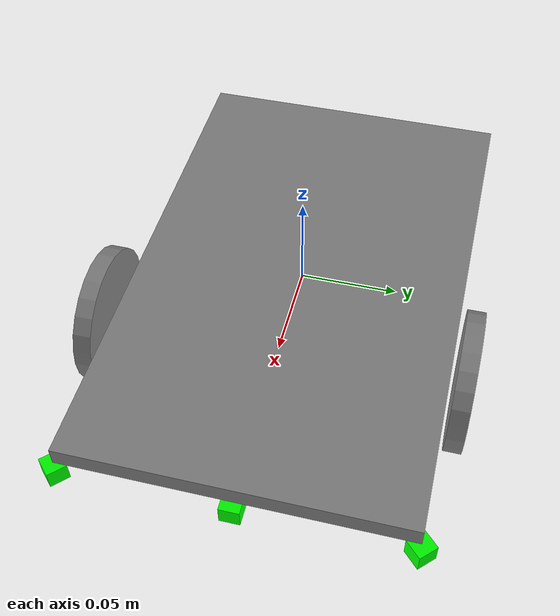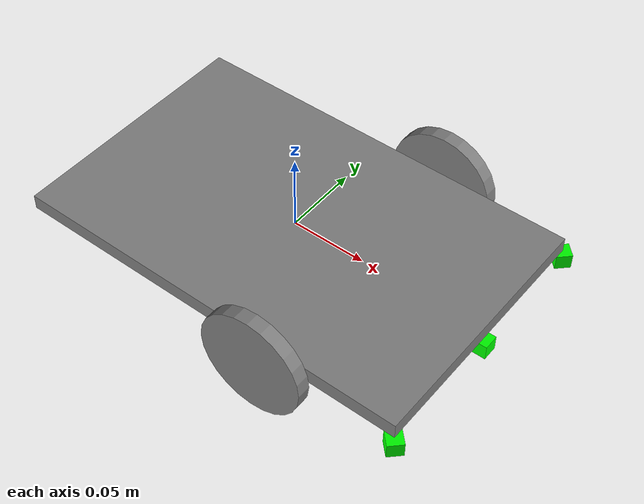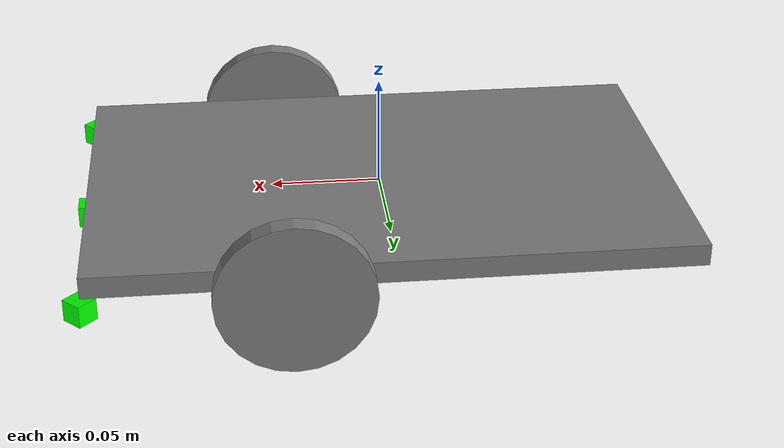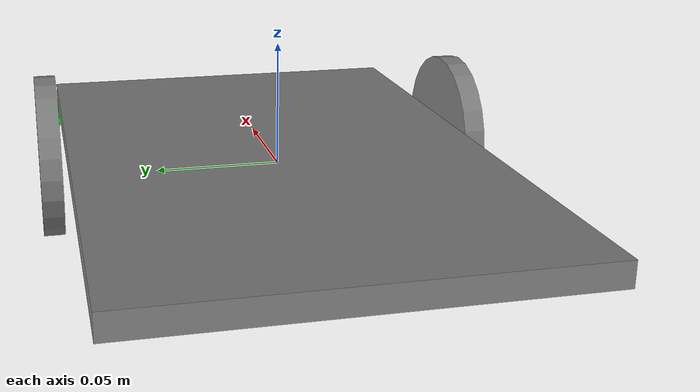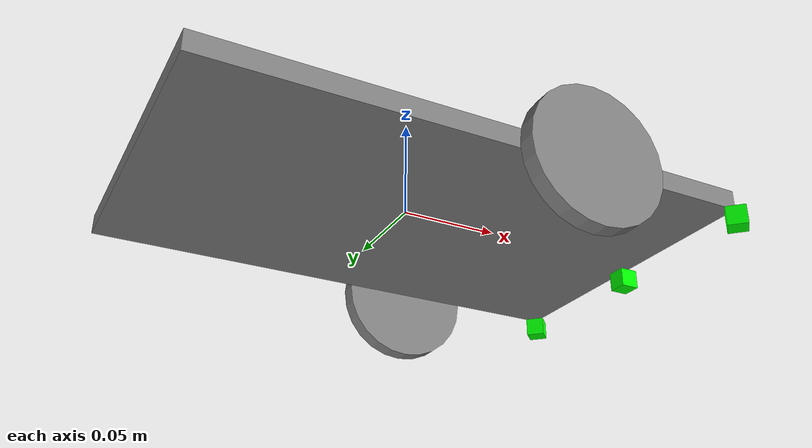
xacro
<?xml version="1.0"?>
<robot xmlns:xacro="http://ros.org/wiki/xacro" name="r2g2">

  <!-- Define the material for visualization -->
  <material name="gray">
    <color rgba="0.5 0.5 0.5 1"/>
  </material>

  <material name="green">
    <color rgba="0 1 0 1" />
  </material>

  <material name="blue">
    <color rgba="0 0 1 1" />
  </material>

  <material name="red_color">
    <color rgba="1 0 0 1" />
  </material>

  <!-- Define the wheel radius and separation distance -->
  <xacro:property name="base_width" value="0.17"/>
  <xacro:property name="base_len" value="0.27"/>
  <xacro:property name="wheel_radius" value="0.035"/>
  <xacro:property name="base_wheel_gap" value="0.007"/>
  <xacro:property name="wheel_separation" value="0.17"/>
  <xacro:property name="wheel_joint_offset" value="0.045"/>

  <!--Base Footprint-->
  <link name="base_footprint">
    <visual>
        <origin xyz="0 0 0" rpy="0 0 0" />
        <geometry>
            <box size="0.001 0.001 0.001" />
        </geometry>
    </visual>
  </link>

  <!-- Base Link -->
  <link name="base_link">
    <visual>
      <origin rpy="0 0 0" xyz="0 0 0"/>
      <geometry>
        <box size="${base_len} ${base_width} 0.01"/>
      </geometry>
      <material name="gray"/>
    </visual>
  </link>

    <!--base_link to base_footprint Joint-->
  <joint name="base_link_joint" type="fixed">
    <origin xyz="0 0 0" rpy="0 0 0" />
    <parent link="base_footprint"/>
    <child link="base_link" />
  </joint>

    <!-- Left Wheel and Link-->
  <link name="left_wheel_link">
    <visual>
      <origin xyz="0 0 0" rpy="${pi/2} 0 0" />
        <geometry>
          <cylinder radius="${wheel_radius}" length="0.009"/>
        </geometry>
        <material name="gray"/>
    </visual>
    <collision>
      <origin xyz="0 0 0" rpy="${pi/2} 0 0"/>
        <geometry>
          <cylinder radius="${wheel_radius}" length="0.009"/>
        </geometry>
    </collision>

  </link>

  <joint name="left_wheel_joint" type="continuous">
      <axis xyz="0 1 0" rpy="0 0 0" />
      <parent link="base_link"/>
      <child link="left_wheel_link"/>
      <origin xyz="${wheel_joint_offset} ${((base_width/2)+base_wheel_gap)*1} -0.005" rpy="0 0 0"/>
  </joint>

    <!-- Right Wheel and Link-->
  <link name="right_wheel_link">
    <visual>
      <origin xyz="0 0 0" rpy="${pi/2} 0 0" />
        <geometry>
          <cylinder radius="${wheel_radius}" length="0.009"/>
        </geometry>
        <material name="gray"/>
    </visual>
    <collision>
      <origin xyz="0 0 0" rpy="${pi/2} 0 0"/>
        <geometry>
          <cylinder radius="${wheel_radius}" length="0.009"/>
        </geometry>
    </collision>
  </link>

  <joint name="right_wheel_joint" type="continuous">
      <axis xyz="0 1 0" rpy="0 0 0" />
      <parent link="base_link"/>
      <child link="right_wheel_link"/>
      <origin xyz="${wheel_joint_offset} ${((base_width/2)+base_wheel_gap)*-1} -0.005" rpy="0 0 0"/>
  </joint>

  <!-- Right Ultrasone sensor-->
  <joint name="right_ultrasone_joint" type="fixed">
      <axis xyz="0 1 0" rpy="${pi/2} 0 0" />
      <parent link="base_link"/>
      <child link="right_sonar"/>
      <origin xyz="${(base_len/2)} ${(base_width/2)*-1} -0.01" rpy="0 0 -0.785"/>
  </joint>

  <link name="right_sonar">
    <visual>
      <origin xyz="0 0 0" rpy="${pi/2} 0 0" />
        <geometry>
          <box size = "0.01 0.01 0.01" />
        </geometry>
        <material name="green"/>
    </visual>
    <collision>
      <origin xyz="0 0 0" rpy="${pi/2} 0 0"/>
        <geometry>
          <box size = "0.01 0.01 0.01"/>
        </geometry>
    </collision>
  </link>

  <!-- Center Ultrasone sensor-->
  <joint name="centre_ultrasone_joint" type="fixed">
      <axis xyz="0 1 0" rpy="${pi/2} 0 0" />
      <parent link="base_link"/>
      <child link="centre_sonar"/>
      <origin xyz="${(base_len/2)} 0 -0.01" rpy="0 0 0"/>
  </joint>

  <link name="centre_sonar">
    <visual>
      <origin xyz="0 0 0" rpy="${pi/2} 0 0" />
        <geometry>
          <box size = "0.01 0.01 0.01" />
        </geometry>
        <material name="green"/>
    </visual>
    <collision>
      <origin xyz="0 0 0" rpy="${pi/2} 0 0"/>
        <geometry>
          <box size = "0.01 0.01 0.01"/>
        </geometry>
    </collision>
  </link>

  <!-- Left Ultrasone sensor-->
  <joint name="left_ultrasone_joint" type="fixed">
      <axis xyz="0 1 0" rpy="${pi/2} 0 0" />
      <parent link="base_link"/>
      <child link="left_sonar"/>
      <origin xyz="${(base_len/2)} ${(base_width/2)*1} -0.01" rpy="0 0 0.785"/>
  </joint>

  <link name="left_sonar">
    <visual>
      <origin xyz="0 0 0" rpy="${pi/2} 0 0" />
        <geometry>
          <box size = "0.01 0.01 0.01" />
        </geometry>
        <material name="green"/>
    </visual>
    <collision>
      <origin xyz="0 0 0" rpy="${pi/2} 0 0"/>
        <geometry>
          <box size = "0.01 0.01 0.01"/>
        </geometry>
    </collision>
  </link>

</robot>
